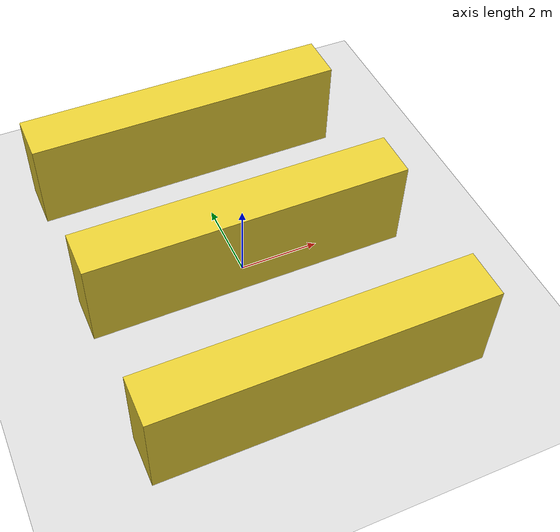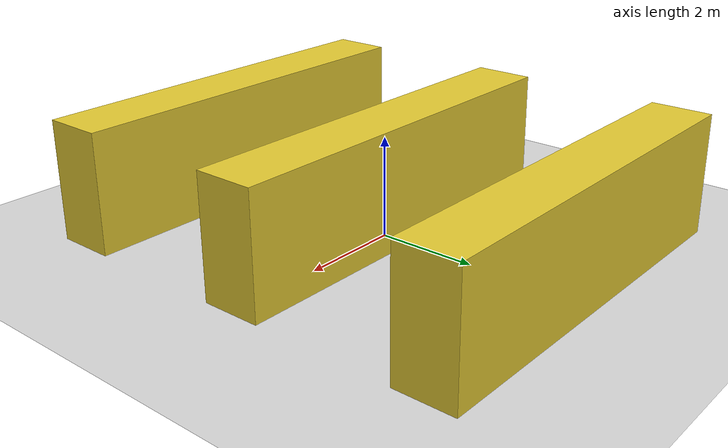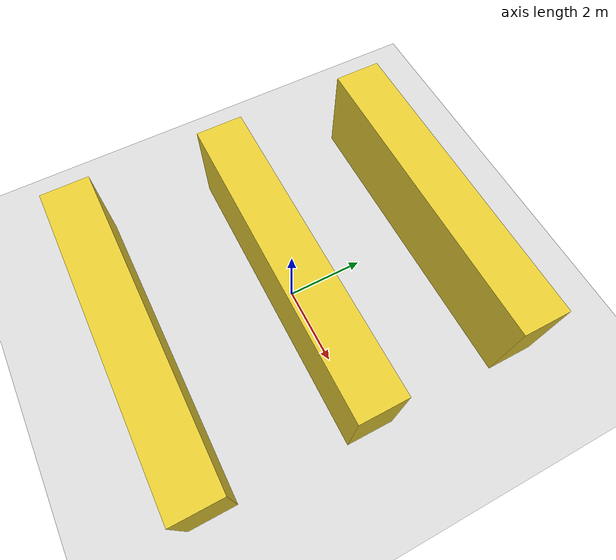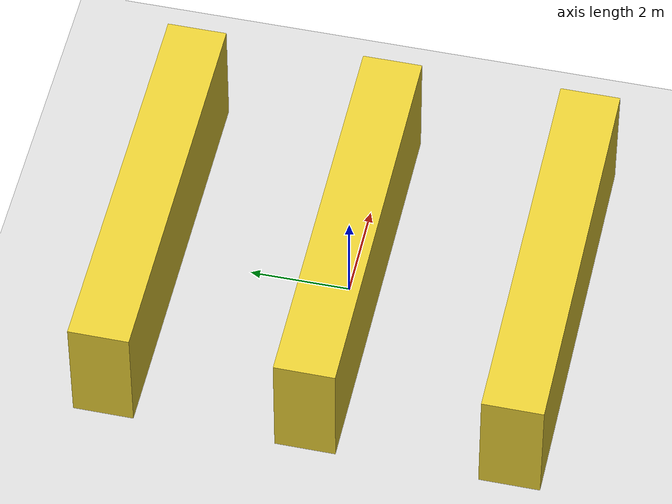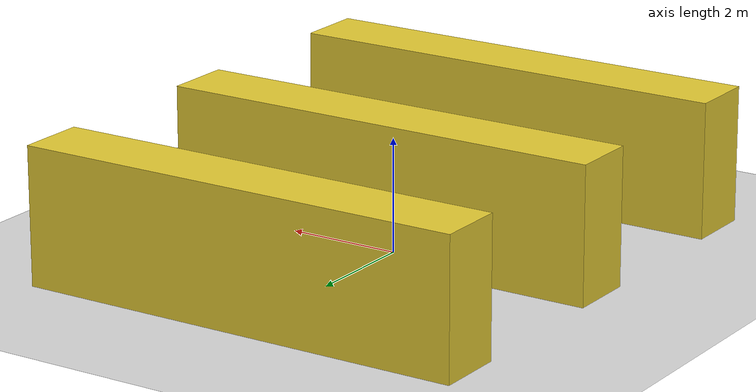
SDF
<?xml version="1.0" encoding="UTF-8"?>
<sdf version="1.9">
  <world name="default">

    <!-- Core systems -->
    <plugin filename="gz-sim-physics-system" name="gz::sim::systems::Physics"/>
    <plugin filename="gz-sim-user-commands-system" name="gz::sim::systems::UserCommands"/>
    <plugin filename="gz-sim-scene-broadcaster-system" name="gz::sim::systems::SceneBroadcaster"/>

    <!-- Rendering / generic sensors -->
    <plugin filename="gz-sim-sensors-system" name="gz::sim::systems::Sensors">
      <render_engine>ogre2</render_engine>
    </plugin>

    <!-- PX4 x500 needs these sensor systems -->
    <plugin filename="gz-sim-imu-system" name="gz::sim::systems::Imu"/>
    <plugin filename="gz-sim-air-pressure-system" name="gz::sim::systems::AirPressure"/>
    <plugin filename="gz-sim-navsat-system" name="gz::sim::systems::NavSat"/>
    <plugin filename="gz-sim-magnetometer-system" name="gz::sim::systems::Magnetometer"/>

    <gravity>0 0 -9.8</gravity>
    <magnetic_field>6e-06 2.3e-05 -4.2e-05</magnetic_field>
    <atmosphere type="adiabatic"/>

    <physics type="ode">
      <max_step_size>0.004</max_step_size>
      <real_time_factor>1.0</real_time_factor>
      <real_time_update_rate>250</real_time_update_rate>
    </physics>

    <scene>
      <grid>true</grid>
      <ambient>0.4 0.4 0.4 1</ambient>
      <background>0.7 0.7 0.7 1</background>
      <shadows>true</shadows>
    </scene>

    <light name="sun" type="directional">
      <pose>0 0 500 0 0 0</pose>
      <cast_shadows>true</cast_shadows>
      <intensity>1.0</intensity>
      <direction>0.001 0.625 -0.78</direction>
      <diffuse>0.904 0.904 0.904 1</diffuse>
      <specular>0.271 0.271 0.271 1</specular>
      <attenuation>
        <range>2000</range>
        <linear>0</linear>
        <constant>1</constant>
        <quadratic>0</quadratic>
      </attenuation>
    </light>

    <spherical_coordinates>
      <surface_model>EARTH_WGS84</surface_model>
      <world_frame_orientation>ENU</world_frame_orientation>
      <latitude_deg>47.397971057728974</latitude_deg>
      <longitude_deg>8.546163739800146</longitude_deg>
      <elevation>0</elevation>
    </spherical_coordinates>

    <model name="ground_plane">
      <static>true</static>
      <pose>0 0 0 0 0 0</pose>
      <link name="link">
        <collision name="collision">
          <geometry>
            <plane>
              <normal>0 0 1</normal>
              <size>500 500</size>
            </plane>
          </geometry>
          <surface>
            <friction><ode/></friction>
            <bounce/>
            <contact/>
          </surface>
        </collision>
        <visual name="visual">
          <geometry>
            <plane>
              <normal>0 0 1</normal>
              <size>500 500</size>
            </plane>
          </geometry>
          <material>
            <ambient>0.85 0.85 0.85 1</ambient>
            <diffuse>0.85 0.85 0.85 1</diffuse>
            <specular>0.85 0.85 0.85 1</specular>
          </material>
        </visual>
      </link>
    </model>

    <!-- Warehouse racks -->
    <model name="rack_1">
      <static>true</static>
      <pose>0.0 -4.0 1.2 0 0 0</pose>
      <link name="link">
        <collision name="collision">
          <geometry>
            <box>
              <size>8.0 1.2 2.4</size>
            </box>
          </geometry>
        </collision>
        <visual name="visual">
          <geometry>
            <box>
              <size>8.0 1.2 2.4</size>
            </box>
          </geometry>
          <material>
            <ambient>0.9 0.8 0.2 1</ambient>
            <diffuse>0.9 0.8 0.2 1</diffuse>
          </material>
        </visual>
      </link>
    </model>

    <model name="rack_2">
      <static>true</static>
      <pose>0.0 0.0 1.2 0 0 0</pose>
      <link name="link">
        <collision name="collision">
          <geometry>
            <box>
              <size>8.0 1.2 2.4</size>
            </box>
          </geometry>
        </collision>
        <visual name="visual">
          <geometry>
            <box>
              <size>8.0 1.2 2.4</size>
            </box>
          </geometry>
          <material>
            <ambient>0.9 0.8 0.2 1</ambient>
            <diffuse>0.9 0.8 0.2 1</diffuse>
          </material>
        </visual>
      </link>
    </model>

    <model name="rack_3">
      <static>true</static>
      <pose>0.0 4.0 1.2 0 0 0</pose>
      <link name="link">
        <collision name="collision">
          <geometry>
            <box>
              <size>8.0 1.2 2.4</size>
            </box>
          </geometry>
        </collision>
        <visual name="visual">
          <geometry>
            <box>
              <size>8.0 1.2 2.4</size>
            </box>
          </geometry>
          <material>
            <ambient>0.9 0.8 0.2 1</ambient>
            <diffuse>0.9 0.8 0.2 1</diffuse>
          </material>
        </visual>
      </link>
    </model>

  </world>
</sdf>
